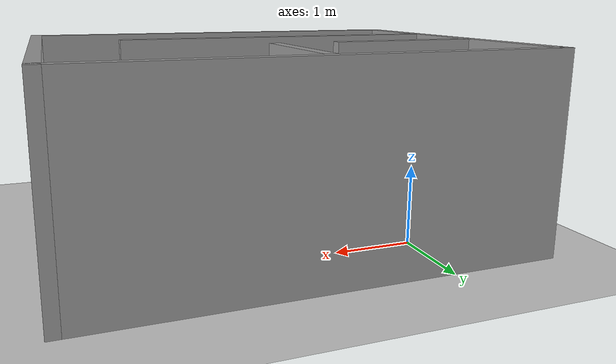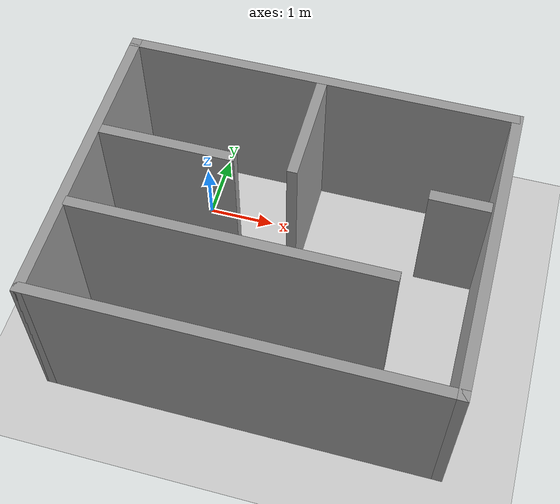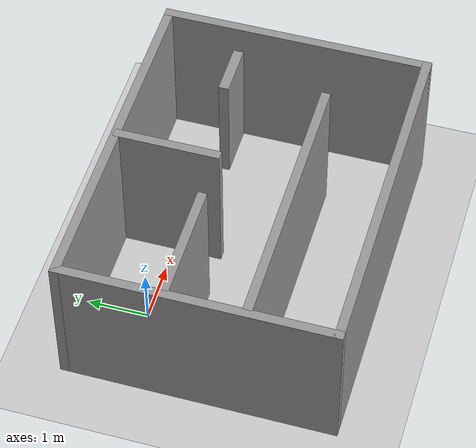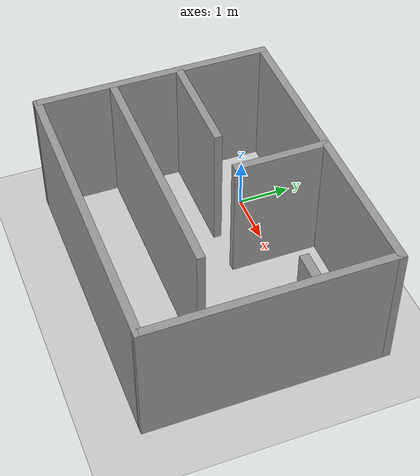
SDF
<sdf version="1.7">
 <world name="default">
  <light name="sun" type="directional">
   <pose>0 0 10 0 -0 0</pose>
   <diffuse>0.8 0.8 0.8 1</diffuse>
   <specular>0.2 0.2 0.2 1</specular>
   <attenuation>
    <range>1000</range>
    <constant>0.9</constant>
    <linear>0.01</linear>
    <quadratic>0.001</quadratic>
   </attenuation>
   <direction>-0.5 0.1 -0.9</direction>
   <spot><inner_angle>0</inner_angle><outer_angle>0</outer_angle><falloff>0</falloff></spot>
  </light>
  <model name="ground_plane">
   <static>1</static>
   <link name="link">
    <collision name="collision">
     <geometry><plane><normal>0 0 1</normal><size>100 100</size></plane></geometry>
     <surface>
      <contact><collide_bitmask>65535</collide_bitmask></contact>
      <friction><ode><mu>100</mu><mu2>50</mu2></ode></friction>
     </surface>
    </collision>
    <visual name="visual">
     <cast_shadows>0</cast_shadows>
     <geometry><plane><normal>0 0 1</normal><size>100 100</size></plane></geometry>
     <material>
      <script><uri>file://media/materials/scripts/gazebo.material</uri><name>Gazebo/Grey</name></script>
     </material>
    </visual>
   </link>
  </model>
  <gravity>0 0 -9.8</gravity>
  <magnetic_field>6e-06 2.3e-05 -4.2e-05</magnetic_field>
  <atmosphere type="adiabatic"/>
  <physics type="ode">
   <max_step_size>0.001</max_step_size>
   <real_time_factor>1</real_time_factor>
   <real_time_update_rate>1000</real_time_update_rate>
  </physics>
  <scene><ambient>0.4 0.4 0.4 1</ambient><background>0.7 0.7 0.7 1</background><shadows>1</shadows></scene>
  <audio><device>default</device></audio>
  <spherical_coordinates>
   <surface_model>EARTH_WGS84</surface_model>
   <latitude_deg>0</latitude_deg>
   <longitude_deg>0</longitude_deg>
   <elevation>0</elevation>
   <heading_deg>0</heading_deg>
  </spherical_coordinates>
  <model name="home2">
   <pose>1.49237 -0.855214 0 0 -0 0</pose>
   <link name="Door_0">
    <collision name="Door_0_Collision">
     <geometry><box><size>0.9 0.17 2</size></box></geometry>
     <pose>0 0 1 0 -0 0</pose>
    </collision>
    <visual name="Door_0_Visual">
     <pose>0 0 1 0 -0 0</pose>
     <geometry><box><size>0.9 0.17 2</size></box></geometry>
     <material>
      <script><uri>file://media/materials/scripts/gazebo.material</uri><name>Gazebo/Grey</name></script>
     </material>
    </visual>
    <pose>2.3 0.5625 0 0 -0 0</pose>
   </link>
   <link name="Wall_0">
    <collision name="Wall_0_Collision">
     <geometry><box><size>5.75 0.15 2.5</size></box></geometry>
     <pose>0 0 1.25 0 -0 0</pose>
    </collision>
    <visual name="Wall_0_Visual">
     <pose>0 0 1.25 0 -0 0</pose>
     <geometry><box><size>5.75 0.15 2.5</size></box></geometry>
     <material>
      <script><uri>file://media/materials/scripts/gazebo.material</uri><name>Gazebo/Grey</name></script>
      <ambient>1 1 1 1</ambient>
     </material>
     <meta><layer>0</layer></meta>
    </visual>
    <pose>-0 -2.5775 0 0 -0 0</pose>
   </link>
   <link name="Wall_1">
    <collision name="Wall_1_Collision">
     <geometry><box><size>4.5 0.15 2.5</size></box></geometry>
     <pose>0 0 1.25 0 -0 0</pose>
    </collision>
    <visual name="Wall_1_Visual">
     <pose>0 0 1.25 0 -0 0</pose>
     <geometry><box><size>4.5 0.15 2.5</size></box></geometry>
     <material>
      <script><uri>file://media/materials/scripts/gazebo.material</uri><name>Gazebo/Grey</name></script>
      <ambient>1 1 1 1</ambient>
     </material>
     <meta><layer>0</layer></meta>
    </visual>
    <pose>2.8 -0.4025 0 0 -0 1.5708</pose>
   </link>
   <link name="Wall_2">
    <collision name="Wall_2_Collision">
     <geometry><box><size>5.75 0.15 2.5</size></box></geometry>
     <pose>0 0 1.25 0 -0 0</pose>
    </collision>
    <visual name="Wall_2_Visual">
     <pose>0 0 1.25 0 -0 0</pose>
     <geometry><box><size>5.75 0.15 2.5</size></box></geometry>
     <material>
      <script><uri>file://media/materials/scripts/gazebo.material</uri><name>Gazebo/Grey</name></script>
      <ambient>1 1 1 1</ambient>
     </material>
     <meta><layer>0</layer></meta>
    </visual>
    <pose>-0 1.7725 0 0 -0 3.14159</pose>
   </link>
   <link name="Wall_3">
    <collision name="Wall_3_Collision">
     <geometry><box><size>4.5 0.15 2.5</size></box></geometry>
     <pose>0 0 1.25 0 -0 0</pose>
    </collision>
    <visual name="Wall_3_Visual">
     <pose>0 0 1.25 0 -0 0</pose>
     <geometry><box><size>4.5 0.15 2.5</size></box></geometry>
     <material>
      <script><uri>file://media/materials/scripts/gazebo.material</uri><name>Gazebo/Grey</name></script>
      <ambient>1 1 1 1</ambient>
     </material>
     <meta><layer>0</layer></meta>
    </visual>
    <pose>-2.8 -0.4025 0 0 -0 -1.5708</pose>
   </link>
   <link name="Wall_5">
    <collision name="Wall_5_Collision">
     <geometry><box><size>2 0.15 2.5</size></box></geometry>
     <pose>0 0 1.25 0 -0 0</pose>
    </collision>
    <visual name="Wall_5_Visual">
     <pose>0 0 1.25 0 -0 0</pose>
     <geometry><box><size>2 0.15 2.5</size></box></geometry>
     <material>
      <script><uri>file://media/materials/scripts/gazebo.material</uri><name>Gazebo/Grey</name></script>
      <ambient>1 1 1 1</ambient>
     </material>
     <meta><layer>0</layer></meta>
    </visual>
    <pose>-1.785 0.1025 0 0 -0 0</pose>
   </link>
   <link name="Wall_7">
    <collision name="Wall_7_Collision">
     <geometry><box><size>1.75 0.15 2.5</size></box></geometry>
     <pose>0 0 1.25 0 -0 0</pose>
    </collision>
    <visual name="Wall_7_Visual">
     <pose>0 0 1.25 0 -0 0</pose>
     <geometry><box><size>1.75 0.15 2.5</size></box></geometry>
     <material>
      <script><uri>file://media/materials/scripts/gazebo.material</uri><name>Gazebo/Grey</name></script>
      <ambient>1 1 1 1</ambient>
     </material>
     <meta><layer>0</layer></meta>
    </visual>
    <pose>0.02 0.9325 0 0 -0 -1.5708</pose>
   </link>
   <link name="Wall_9">
    <collision name="Wall_9_Collision">
     <geometry><box><size>4.5 0.15 2.5</size></box></geometry>
     <pose>0 0 1.25 0 -0 0</pose>
    </collision>
    <visual name="Wall_9_Visual">
     <pose>0 0 1.25 0 -0 0</pose>
     <geometry><box><size>4.5 0.15 2.5</size></box></geometry>
     <material>
      <script><uri>file://media/materials/scripts/gazebo.material</uri><name>Gazebo/Grey</name></script>
      <ambient>1 1 1 1</ambient>
     </material>
     <meta><layer>0</layer></meta>
    </visual>
    <pose>-0.495 -1.1775 0 0 -0 0</pose>
   </link>
   <static>1</static>
  </model>
 </world>
</sdf>
